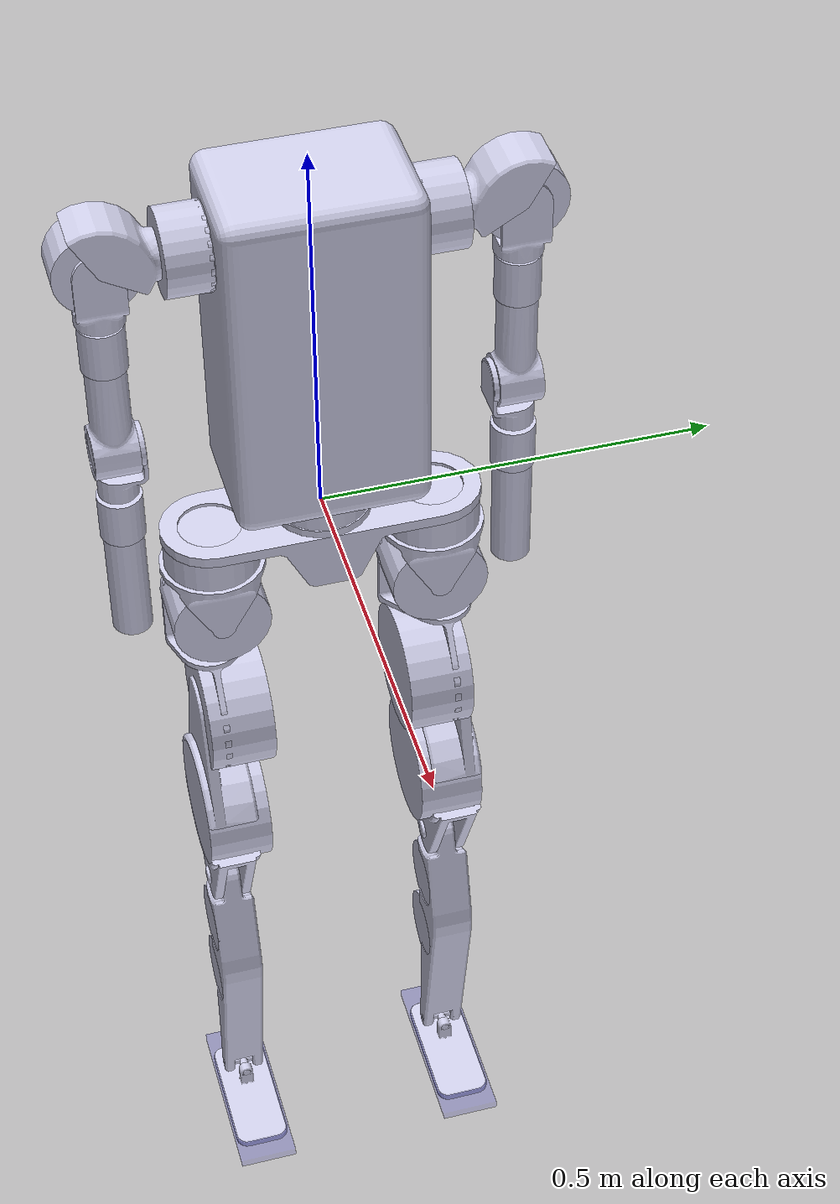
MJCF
<mujoco model="humanoid_yrp">
  <compiler angle="radian" meshdir="meshes/"/>

  <asset>
    <mesh name="pelvis_link" file="pelvis_link.stl"/>
    <mesh name="left_hip_pitch_link" file="left_hip_pitch_link.stl"/>
    <mesh name="left_hip_roll_link" file="left_hip_roll_link.stl"/>
    <mesh name="left_hip_yaw_link" file="left_hip_yaw_link.stl"/>
    <mesh name="left_knee_pitch_link" file="left_knee_pitch_link.stl"/>
    <mesh name="left_ankle_pitch_link" file="left_ankle_pitch_link.stl"/>
    <mesh name="left_ankle_roll_link" file="left_ankle_roll_link.stl"/>
    <mesh name="right_hip_pitch_link" file="right_hip_pitch_link.stl"/>
    <mesh name="right_hip_roll_link" file="right_hip_roll_link.stl"/>
    <mesh name="right_hip_yaw_link" file="right_hip_yaw_link.stl"/>
    <mesh name="right_knee_pitch_link" file="right_knee_pitch_link.stl"/>
    <mesh name="right_ankle_pitch_link" file="right_ankle_pitch_link.stl"/>
    <mesh name="right_ankle_roll_link" file="right_ankle_roll_link.stl"/>
    <mesh name="torso_link" file="torso_link.stl"/>
    <mesh name="left_shoulder_pitch_link" file="left_shoulder_pitch_link.stl"/>
    <mesh name="left_shoulder_roll_link" file="left_shoulder_roll_link.stl"/>
    <mesh name="left_shoulder_yaw_link" file="left_shoulder_yaw_link.stl"/>
    <mesh name="left_elbow_pitch_link" file="left_elbow_pitch_link.stl"/>
    <mesh name="left_elbow_yaw_link" file="left_elbow_yaw_link.stl"/>
    <mesh name="right_shoulder_pitch_link" file="right_shoulder_pitch_link.stl"/>
    <mesh name="right_shoulder_roll_link" file="right_shoulder_roll_link.stl"/>
    <mesh name="right_shoulder_yaw_link" file="right_shoulder_yaw_link.stl"/>
    <mesh name="right_elbow_pitch_link" file="right_elbow_pitch_link.stl"/>
    <mesh name="right_elbow_yaw_link" file="right_elbow_yaw_link.stl"/>
  </asset>

  <worldbody>
    <body name="root">
      <inertial pos="0 0 0" mass="1e-06" diaginertia="1e-09 1e-09 1e-09"/>
      <joint name="floating_base_joint" type="free" limited="false" actuatorfrclimited="false"/>
      <site name="imu_mount" pos="0 0 0"/>
      <body name="pelvis_link">
        <inertial pos="0 0 -0.0331047" quat="0.5 0.5 -0.5 0.5" mass="2.7003" diaginertia="0.015082 0.012947 0.00490969"/>
        <geom type="mesh" contype="0" conaffinity="0" rgba="0.8 0.8 0.9 1" mesh="pelvis_link"/>
        <site name="torso_mount" pos="0 0 0.0475"/>
        <body name="left_hip_yaw_link" pos="0 0.14 -0.0635">
          <inertial pos="0 0 -0.0184659" quat="0 0.707107 0 0.707107" mass="0.608592" diaginertia="0.00148151 0.00127427 0.000772991"/>
          <joint name="left_hip_yaw_joint" pos="0 0 0" axis="0 0 1" range="-2.722 2.722" armature="0.061488" damping="0.0069" frictionloss="0.576"/>
          <geom type="mesh" contype="0" conaffinity="0" rgba="0.8 0.8 0.9 1" mesh="left_hip_yaw_link"/>
          <body name="left_hip_roll_link" pos="-0.027 0 -0.075">
            <inertial pos="0.0186547 0.00773286 -0.112884" quat="0.68979 -0.0379641 -0.0781425 0.718778" mass="0.481682" diaginertia="0.00350877 0.00313741 0.00095478"/>
            <joint name="left_hip_roll_joint" pos="0 0 0" axis="1 0 0" range="-0.5 1.047" armature="0.32256" damping="0.766" frictionloss="2.492"/>
            <geom type="mesh" contype="0" conaffinity="0" rgba="0.8 0.8 0.9 1" mesh="left_hip_roll_link"/>
            <body name="left_hip_pitch_link" pos="0.0275 0.0228 -0.175">
              <inertial pos="0 -0.00576008 -0.181558" quat="0.706862 -0.0185895 0.0185895 0.706862" mass="1.56011" diaginertia="0.021032 0.0186888 0.00348531"/>
              <joint name="left_hip_pitch_joint" pos="0 0 0" axis="0 1 0" range="-3.1415 3.1415" armature="0.155952" damping="0.338" frictionloss="1.481"/>
              <geom type="mesh" contype="0" conaffinity="0" rgba="0.8 0.8 0.9 1" mesh="left_hip_pitch_link"/>
              <body name="left_knee_pitch_link" pos="0 -0.00999965 -0.33">
                <inertial pos="0.0178524 -3.47622e-07 -0.194594" quat="0.707096 0.00386285 0.00386285 0.707096" mass="1.37882" diaginertia="0.0296469 0.0293773 0.00130945"/>
                <joint name="left_knee_pitch_joint" pos="0 0 0" axis="0 1 0" range="0 2.007" armature="0.155952" damping="0.338" frictionloss="1.481"/>
                <geom type="mesh" contype="0" conaffinity="0" rgba="0.8 0.8 0.9 1" mesh="left_knee_pitch_link"/>
                <body name="left_ankle_pitch_link" pos="-0.000857798 2.61427e-07 -0.424999">
                  <inertial pos="1.5474e-09 -6.11443e-07 7.37765e-10" quat="0.500032 0.500032 -0.499968 0.499968" mass="0.0915496" diaginertia="2.67722e-05 1.42226e-05 1.42226e-05"/>
                  <joint name="left_ankle_pitch_joint" pos="0 0 0" axis="0 1 0" range="-1.221 0.872" armature="0.043416" damping="0.028" frictionloss="0.876"/>
                  <geom type="mesh" contype="0" conaffinity="0" rgba="0.8 0.8 0.9 1" mesh="left_ankle_pitch_link"/>
                  <body name="left_ankle_roll_link">
                    <inertial pos="0.0388421 -6.09895e-07 -0.0295267" quat="0 0.715124 0 0.698997" mass="1.02847" diaginertia="0.00308315 0.00269298 0.000478241"/>
                    <joint name="left_ankle_roll_joint" pos="0 0 0" axis="1 0 0" range="-0.436 0.436" armature="0.043416" damping="0.028" frictionloss="0.876"/>
                    <geom type="mesh" contype="0" conaffinity="0" rgba="0.8 0.8 0.9 1" mesh="left_ankle_roll_link"/>
                    <geom name="left_foot_collision" size="0.12 0.04 0.006" pos="0.04135 0 -0.032" type="box" group="1" rgba="0 0 0.7 0.1"/>
                    <body name="left_foot" pos="0.04135 0 -0.037">
                      <inertial pos="0 0 0" mass="1e-06" diaginertia="1e-09 1e-09 1e-09"/>
                    </body>
                  </body>
                </body>
                <body name="left_ankle_pitch_actuator" pos="-0.000201835 0.0240001 -0.0999998">
                  <inertial pos="4.59253e-05 -0.0235544 -0.000101461" quat="0.707107 0.707107 0 0" mass="0.84" diaginertia="0.000782932 0.000782932 0.00115762"/>
                  <geom size="0.0525 0.027" pos="4.59253e-05 -0.0235544 -0.000101461" quat="0.707107 0.707107 0 0" type="cylinder" contype="0" conaffinity="0" rgba="0.8 0.8 0.9 1"/>
                </body>
                <body name="left_ankle_roll_actuator" pos="-0.000423853 -0.0239999 -0.21">
                  <inertial pos="0.000104282 0.0235535 3.90481e-05" quat="0.707107 0.707107 0 0" mass="0.84" diaginertia="0.000782932 0.000782932 0.00115762"/>
                  <geom size="0.0525 0.027" pos="0.000104282 0.0235535 3.90481e-05" quat="0.707107 0.707107 0 0" type="cylinder" contype="0" conaffinity="0" rgba="0.8 0.8 0.9 1"/>
                </body>
              </body>
              <body name="left_knee_pitch_actuator" pos="0 0.0150003 -0.18">
                <inertial pos="-0.000238364 -0.0334461 2.11444e-05" quat="0.707107 0.707107 0 0" mass="3.2" diaginertia="0.00761707 0.00761707 0.01156"/>
                <geom size="0.085 0.0415" pos="-0.000238364 -0.0334461 2.11444e-05" quat="0.707107 0.707107 0 0" type="cylinder" contype="0" conaffinity="0" rgba="0.8 0.8 0.9 1"/>
              </body>
            </body>
            <body name="left_hip_pitch_actuator" pos="0.0275 -0.042 -0.175">
              <inertial pos="-0.000100823 0.0334459 -0.000217026" quat="0.707107 0.707107 0 0" mass="3.2" diaginertia="0.00761707 0.00761707 0.01156"/>
              <geom size="0.085 0.0415" pos="-0.000100823 0.0334459 -0.000217026" quat="0.707107 0.707107 0 0" type="cylinder" contype="0" conaffinity="0" rgba="0.8 0.8 0.9 1"/>
            </body>
          </body>
          <body name="left_hip_roll_actuator" pos="0.0425 0 -0.075">
            <inertial pos="-0.0425 -2.95577e-06 -2.27996e-12" quat="0.707107 0 0.707107 0" mass="2.18" diaginertia="0.00340752 0.00340752 0.00418996"/>
            <geom size="0.062 0.0425" pos="-0.0425 -2.95577e-06 -2.27996e-12" quat="0.707107 0 0.707107 0" type="cylinder" contype="0" conaffinity="0" rgba="0.8 0.8 0.9 1"/>
          </body>
        </body>
        <body name="left_hip_yaw_actuator" pos="0 0.14 -0.023">
          <inertial pos="4.6014e-07 -2.39978e-07 -0.0224909" mass="1.35" diaginertia="0.00167724 0.00167724 0.00243"/>
          <geom size="0.06 0.03205" pos="4.6014e-07 -2.39978e-07 -0.0224909" type="cylinder" contype="0" conaffinity="0" rgba="0.8 0.8 0.9 1"/>
        </body>
        <body name="right_hip_yaw_link" pos="0 -0.14 -0.0635">
          <inertial pos="0 0 -0.0184659" quat="0 0.707107 0 0.707107" mass="0.608592" diaginertia="0.00148151 0.00127427 0.000772991"/>
          <joint name="right_hip_yaw_joint" pos="0 0 0" axis="0 0 1" range="-2.722 2.722" armature="0.061488" damping="0.0069" frictionloss="0.576"/>
          <geom type="mesh" contype="0" conaffinity="0" rgba="0.8 0.8 0.9 1" mesh="right_hip_yaw_link"/>
          <body name="right_hip_roll_link" pos="-0.027 0 -0.075">
            <inertial pos="0.0186547 -0.00773286 -0.112884" quat="0.718778 -0.0781425 -0.0379641 0.68979" mass="0.481682" diaginertia="0.00350877 0.00313741 0.00095478"/>
            <joint name="right_hip_roll_joint" pos="0 0 0" axis="1 0 0" range="-1.047 0.5" armature="0.32256" damping="0.766" frictionloss="2.492"/>
            <geom type="mesh" contype="0" conaffinity="0" rgba="0.8 0.8 0.9 1" mesh="right_hip_roll_link"/>
            <body name="right_hip_pitch_link" pos="0.0275 -0.0228 -0.175">
              <inertial pos="0 0.00576008 -0.181558" quat="0.706862 0.0185895 -0.0185895 0.706862" mass="1.56011" diaginertia="0.021032 0.0186888 0.00348531"/>
              <joint name="right_hip_pitch_joint" pos="0 0 0" axis="0 1 0" range="-3.1415 3.1415" armature="0.155952" damping="0.338" frictionloss="1.481"/>
              <geom type="mesh" contype="0" conaffinity="0" rgba="0.8 0.8 0.9 1" mesh="right_hip_pitch_link"/>
              <body name="right_knee_pitch_link" pos="0 0.01 -0.33">
                <inertial pos="0.0182451 8.45995e-10 -0.194558" quat="0.7071 0.00314926 0.00314926 0.7071" mass="1.37882" diaginertia="0.0296469 0.0293773 0.00130945"/>
                <joint name="right_knee_pitch_joint" pos="0 0 0" axis="0 1 0" range="0 2.007" armature="0.155952" damping="0.338" frictionloss="1.481"/>
                <geom type="mesh" contype="0" conaffinity="0" rgba="0.8 0.8 0.9 1" mesh="right_knee_pitch_link"/>
                <body name="right_ankle_pitch_link" pos="0 0 -0.425">
                  <inertial pos="1.5474e-09 -1.54739e-09 0" quat="0.5 0.5 -0.5 0.5" mass="0.0915496" diaginertia="2.67722e-05 1.42226e-05 1.42226e-05"/>
                  <joint name="right_ankle_pitch_joint" pos="0 0 0" axis="0 1 0" range="-1.221 0.872" armature="0.043416" damping="0.028" frictionloss="0.876"/>
                  <geom type="mesh" contype="0" conaffinity="0" rgba="0.8 0.8 0.9 1" mesh="right_ankle_pitch_link"/>
                  <body name="right_ankle_roll_link">
                    <inertial pos="0.0388459 0 -0.0295218" quat="0 0.71508 0 0.699043" mass="1.02847" diaginertia="0.00308315 0.00269298 0.000478241"/>
                    <joint name="right_ankle_roll_joint" pos="0 0 0" axis="1 0 0" range="-0.436 0.436" armature="0.043416" damping="0.028" frictionloss="0.876"/>
                    <geom type="mesh" contype="0" conaffinity="0" rgba="0.8 0.8 0.9 1" mesh="right_ankle_roll_link"/>
                    <geom name="right_foot_collision" size="0.12 0.04 0.006" pos="0.04135 0 -0.032" type="box" group="1" rgba="0 0 0.7 0.1"/>
                    <body name="right_foot" pos="0.04135 0 -0.037">
                      <inertial pos="0 0 0" mass="1e-06" diaginertia="1e-09 1e-09 1e-09"/>
                    </body>
                  </body>
                </body>
                <body name="right_ankle_pitch_actuator" pos="0 -0.024 -0.1">
                  <inertial pos="-3.92528e-05 0.023554 0.000104203" quat="0.707107 0.707107 0 0" mass="0.84" diaginertia="0.000782932 0.000782932 0.00115762"/>
                  <geom size="0.0525 0.027" pos="-3.92528e-05 0.023554 0.000104203" quat="0.707107 0.707107 0 0" type="cylinder" contype="0" conaffinity="0" rgba="0.8 0.8 0.9 1"/>
                </body>
                <body name="right_ankle_roll_actuator" pos="0 0.024 -0.21">
                  <inertial pos="-0.000101531 -0.023554 -4.57216e-05" quat="0.707107 0.707107 0 0" mass="0.84" diaginertia="0.000782932 0.000782932 0.00115762"/>
                  <geom size="0.0525 0.027" pos="-0.000101531 -0.023554 -4.57216e-05" quat="0.707107 0.707107 0 0" type="cylinder" contype="0" conaffinity="0" rgba="0.8 0.8 0.9 1"/>
                </body>
              </body>
              <body name="right_knee_pitch_actuator" pos="0 -0.015 -0.18">
                <inertial pos="-0.000137514 0.0334459 0.000195846" quat="0.707107 0.707107 0 0" mass="3.2" diaginertia="0.00761707 0.00761707 0.01156"/>
                <geom size="0.085 0.0415" pos="-0.000137514 0.0334459 0.000195846" quat="0.707107 0.707107 0 0" type="cylinder" contype="0" conaffinity="0" rgba="0.8 0.8 0.9 1"/>
              </body>
            </body>
            <body name="right_hip_pitch_actuator" pos="0.0275 0.042 -0.175">
              <inertial pos="-0.00010085 -0.0334459 0.000217013" quat="0.707107 0.707107 0 0" mass="3.2" diaginertia="0.00761707 0.00761707 0.01156"/>
              <geom size="0.085 0.0415" pos="-0.00010085 -0.0334459 0.000217013" quat="0.707107 0.707107 0 0" type="cylinder" contype="0" conaffinity="0" rgba="0.8 0.8 0.9 1"/>
            </body>
          </body>
          <body name="right_hip_roll_actuator" pos="0.0425 0 -0.075">
            <inertial pos="-0.0425 -2.95577e-06 -1.95313e-09" quat="0.707107 0 0.707107 0" mass="2.18" diaginertia="0.00340752 0.00340752 0.00418996"/>
            <geom size="0.062 0.0425" pos="-0.0425 -2.95577e-06 -1.95313e-09" quat="0.707107 0 0.707107 0" type="cylinder" contype="0" conaffinity="0" rgba="0.8 0.8 0.9 1"/>
          </body>
        </body>
        <body name="right_hip_yaw_actuator" pos="0 -0.14 -0.023">
          <inertial pos="5.16968e-07 -4.542e-08 -0.0224909" mass="1.35" diaginertia="0.00167724 0.00167724 0.00243"/>
          <geom size="0.06 0.03205" pos="5.16968e-07 -4.542e-08 -0.0224909" type="cylinder" contype="0" conaffinity="0" rgba="0.8 0.8 0.9 1"/>
        </body>
        <body name="torso_yaw_link" pos="0 0 0.0475">
          <inertial pos="0 0 0.212121" mass="13.6222" diaginertia="0.279463 0.248413 0.0991731"/>
          <joint name="torso_yaw_joint" pos="0 0 0" axis="0 0 1" range="-1.5707 1.5707" armature="0.061488" damping="0.0069" frictionloss="0.576"/>
          <geom type="mesh" contype="0" conaffinity="0" rgba="0.8 0.8 0.9 1" mesh="torso_link"/>
          <site name="left_arm_mount" pos="0 0.176 0.355"/>
          <site name="right_arm_mount" pos="0 -0.176 0.355"/>
          <body name="torso" pos="0 0 0.355">
            <inertial pos="0 0 0" mass="1e-06" diaginertia="1e-09 1e-09 1e-09"/>
          </body>
          <body name="left_shoulder_pitch_link" pos="0 0.176 0.355">
            <inertial pos="-8.31465e-10 0.034932 0.0200071" quat="0.284455 0.647368 -0.647368 0.284455" mass="0.242101" diaginertia="0.000423529 0.000359202 0.000178981"/>
            <joint name="left_shoulder_pitch_joint" pos="0 0 0" axis="0 1 0" range="-2.618 2.007" armature="0.043416" damping="0.028" frictionloss="0.876"/>
            <geom type="mesh" contype="0" conaffinity="0" rgba="0.8 0.8 0.9 1" mesh="left_shoulder_pitch_link"/>
            <body name="left_shoulder_roll_link" pos="0.024 0.07 0">
              <inertial pos="-0.0192802 7.42705e-09 -0.0545648" quat="0.96696 -2.1985e-07 0.254927 -8.33909e-07" mass="0.28974" diaginertia="0.000310056 0.000288331 0.000120903"/>
              <joint name="left_shoulder_roll_joint" pos="0 0 0" axis="1 0 0" range="-0.175 2.531" armature="0.043416" damping="0.028" frictionloss="0.876"/>
              <geom type="mesh" contype="0" conaffinity="0" rgba="0.8 0.8 0.9 1" mesh="left_shoulder_roll_link"/>
              <body name="left_shoulder_yaw_link" pos="-0.027 0 -0.1405">
                <inertial pos="-3.90912e-10 8.07792e-11 -0.0660303" quat="0.707107 0 0 0.707107" mass="0.367898" diaginertia="0.000739689 0.000721274 0.000148577"/>
                <joint name="left_shoulder_yaw_joint" pos="0 0 0" axis="0 0 1" range="-2.88 2.88" armature="0.0178848" damping="0.014" frictionloss="0.23"/>
                <geom type="mesh" contype="0" conaffinity="0" rgba="0.8 0.8 0.9 1" mesh="left_shoulder_yaw_link"/>
                <body name="left_elbow_pitch_link" pos="0 -0.03 -0.128">
                  <inertial pos="-9.27985e-10 0.0223713 -0.0417957" quat="0.667618 0.232994 -0.232994 0.667618" mass="0.226963" diaginertia="0.000158854 0.000148219 6.5726e-05"/>
                  <joint name="left_elbow_pitch_joint" pos="0 0 0" axis="0 1 0" range="-2.182 0" armature="0.0178848" damping="0.014" frictionloss="0.23"/>
                  <geom type="mesh" contype="0" conaffinity="0" rgba="0.8 0.8 0.9 1" mesh="left_elbow_pitch_link"/>
                  <body name="left_elbow_yaw_link" pos="0 0.029 -0.1255">
                    <inertial pos="0 0 -0.0779665" mass="0.306173" diaginertia="0.000668211 0.000668211 9.56405e-05"/>
                    <joint name="left_elbow_yaw_joint" pos="0 0 0" axis="0 0 1" range="-2.356 2.356" armature="0.0178848" damping="0.014" frictionloss="0.23"/>
                    <geom type="mesh" contype="0" conaffinity="0" rgba="0.8 0.8 0.9 1" mesh="left_elbow_yaw_link"/>
                    <body name="left_end_effector" pos="0 0 -0.155">
                      <inertial pos="0 0 0" mass="1e-06" diaginertia="1e-09 1e-09 1e-09"/>
                    </body>
                  </body>
                  <body name="left_elbow_yaw_actuator" pos="0 0.029 -0.065">
                    <inertial pos="-2.68858e-06 7.2086e-06 -0.034498" mass="0.377" diaginertia="0.000188885 0.000188885 0.000147784"/>
                    <geom size="0.028 0.03025" pos="-2.68858e-06 7.2086e-06 -0.034498" type="cylinder" contype="0" conaffinity="0" rgba="0.8 0.8 0.9 1"/>
                  </body>
                </body>
                <body name="left_shoulder_yaw_actuator" pos="0 0 0.0605">
                  <inertial pos="5.24476e-06 -5.62893e-06 -0.034498" mass="0.377" diaginertia="0.000188885 0.000188885 0.000147784"/>
                  <geom size="0.028 0.03025" pos="5.24476e-06 -5.62893e-06 -0.034498" type="cylinder" contype="0" conaffinity="0" rgba="0.8 0.8 0.9 1"/>
                </body>
                <body name="left_elbow_pitch_actuator" pos="0 0.0305 -0.128">
                  <inertial pos="-2.68858e-06 -0.034498 -7.2086e-06" quat="0.707107 0.707107 0 0" mass="0.377" diaginertia="0.000188885 0.000188885 0.000147784"/>
                  <geom size="0.028 0.03025" pos="-2.68858e-06 -0.034498 -7.2086e-06" quat="0.707107 0.707107 0 0" type="cylinder" contype="0" conaffinity="0" rgba="0.8 0.8 0.9 1"/>
                </body>
              </body>
            </body>
            <body name="left_shoulder_roll_actuator" pos="-0.0269 0.07 0">
              <inertial pos="0.022954 -0.000101438 -4.59265e-05" quat="0.707107 0 0.707107 0" mass="0.84" diaginertia="0.000782932 0.000782932 0.00115762"/>
              <geom size="0.0525 0.027" pos="0.022954 -0.000101438 -4.59265e-05" quat="0.707107 0 0.707107 0" type="cylinder" contype="0" conaffinity="0" rgba="0.8 0.8 0.9 1"/>
            </body>
          </body>
          <body name="left_shoulder_pitch_actuator" pos="0 0.125 0.355">
            <inertial pos="0.000111292 0.022954 -3.61176e-06" quat="0.707107 0.707107 0 0" mass="0.84" diaginertia="0.000782932 0.000782932 0.00115762"/>
            <geom size="0.0525 0.027" pos="0.000111292 0.022954 -3.61176e-06" quat="0.707107 0.707107 0 0" type="cylinder" contype="0" conaffinity="0" rgba="0.8 0.8 0.9 1"/>
          </body>
          <body name="right_shoulder_pitch_link" pos="0 -0.176 0.355">
            <inertial pos="8.31465e-10 -0.034932 0.0200071" quat="0.647368 0.284455 -0.284455 0.647368" mass="0.242101" diaginertia="0.000423529 0.000359202 0.000178981"/>
            <joint name="right_shoulder_pitch_joint" pos="0 0 0" axis="0 1 0" range="-2.618 2.007" armature="0.043416" damping="0.028" frictionloss="0.876"/>
            <geom type="mesh" contype="0" conaffinity="0" rgba="0.8 0.8 0.9 1" mesh="right_shoulder_pitch_link"/>
            <body name="right_shoulder_roll_link" pos="0.024 -0.07 0">
              <inertial pos="-0.0192802 7.42705e-09 -0.0545648" quat="0.96696 -2.1985e-07 0.254927 -8.33909e-07" mass="0.28974" diaginertia="0.000310056 0.000288331 0.000120903"/>
              <joint name="right_shoulder_roll_joint" pos="0 0 0" axis="1 0 0" range="-2.531 0.175" armature="0.043416" damping="0.028" frictionloss="0.876"/>
              <geom type="mesh" contype="0" conaffinity="0" rgba="0.8 0.8 0.9 1" mesh="right_shoulder_roll_link"/>
              <body name="right_shoulder_yaw_link" pos="-0.027 0 -0.1405">
                <inertial pos="-3.90912e-10 8.07791e-11 -0.0660303" quat="0.707107 0 0 0.707107" mass="0.367898" diaginertia="0.000739689 0.000721274 0.000148577"/>
                <joint name="right_shoulder_yaw_joint" pos="0 0 0" axis="0 0 1" range="-2.88 2.88" armature="0.0178848" damping="0.014" frictionloss="0.23"/>
                <geom type="mesh" contype="0" conaffinity="0" rgba="0.8 0.8 0.9 1" mesh="right_shoulder_yaw_link"/>
                <body name="right_elbow_pitch_link" pos="0 0.03 -0.128">
                  <inertial pos="9.27985e-10 -0.0223713 -0.0417957" quat="0.667618 -0.232994 0.232994 0.667618" mass="0.226963" diaginertia="0.000158854 0.000148219 6.5726e-05"/>
                  <joint name="right_elbow_pitch_joint" pos="0 0 0" axis="0 1 0" range="-2.182 0" armature="0.0178848" damping="0.014" frictionloss="0.23"/>
                  <geom type="mesh" contype="0" conaffinity="0" rgba="0.8 0.8 0.9 1" mesh="right_elbow_pitch_link"/>
                  <body name="right_elbow_yaw_link" pos="0 -0.029 -0.1255">
                    <inertial pos="0 0 -0.0779665" mass="0.306173" diaginertia="0.000668211 0.000668211 9.56405e-05"/>
                    <joint name="right_elbow_yaw_joint" pos="0 0 0" axis="0 0 1" range="-2.356 2.356" armature="0.0178848" damping="0.014" frictionloss="0.23"/>
                    <geom type="mesh" contype="0" conaffinity="0" rgba="0.8 0.8 0.9 1" mesh="right_elbow_yaw_link"/>
                    <body name="right_end_effector" pos="0 0 -0.155">
                      <inertial pos="0 0 0" mass="1e-06" diaginertia="1e-09 1e-09 1e-09"/>
                    </body>
                  </body>
                  <body name="right_elbow_yaw_actuator" pos="0 -0.029 -0.065">
                    <inertial pos="-2.68858e-06 7.2086e-06 -0.034498" mass="0.377" diaginertia="0.000188885 0.000188885 0.000147784"/>
                    <geom size="0.028 0.03025" pos="-2.68858e-06 7.2086e-06 -0.034498" type="cylinder" contype="0" conaffinity="0" rgba="0.8 0.8 0.9 1"/>
                  </body>
                </body>
                <body name="right_shoulder_yaw_actuator" pos="0 0 0.0605">
                  <inertial pos="-5.24476e-06 5.62893e-06 -0.034498" mass="0.377" diaginertia="0.000188885 0.000188885 0.000147784"/>
                  <geom size="0.028 0.03025" pos="-5.24476e-06 5.62893e-06 -0.034498" type="cylinder" contype="0" conaffinity="0" rgba="0.8 0.8 0.9 1"/>
                </body>
                <body name="right_elbow_pitch_actuator" pos="0 -0.0305 -0.128">
                  <inertial pos="2.68858e-06 0.034498 -7.2086e-06" quat="0.707107 0.707107 0 0" mass="0.377" diaginertia="0.000188885 0.000188885 0.000147784"/>
                  <geom size="0.028 0.03025" pos="2.68858e-06 0.034498 -7.2086e-06" quat="0.707107 0.707107 0 0" type="cylinder" contype="0" conaffinity="0" rgba="0.8 0.8 0.9 1"/>
                </body>
              </body>
            </body>
            <body name="right_shoulder_roll_actuator" pos="-0.0269 -0.07 0">
              <inertial pos="0.022954 -0.000101438 -4.59265e-05" quat="0.707107 0 0.707107 0" mass="0.84" diaginertia="0.000782932 0.000782932 0.00115762"/>
              <geom size="0.0525 0.027" pos="0.022954 -0.000101438 -4.59265e-05" quat="0.707107 0 0.707107 0" type="cylinder" contype="0" conaffinity="0" rgba="0.8 0.8 0.9 1"/>
            </body>
          </body>
          <body name="right_shoulder_pitch_actuator" pos="0 -0.125 0.355">
            <inertial pos="-0.000111292 -0.022954 -3.61176e-06" quat="0.707107 0.707107 0 0" mass="0.84" diaginertia="0.000782932 0.000782932 0.00115762"/>
            <geom size="0.0525 0.027" pos="-0.000111292 -0.022954 -3.61176e-06" quat="0.707107 0.707107 0 0" type="cylinder" contype="0" conaffinity="0" rgba="0.8 0.8 0.9 1"/>
          </body>
        </body>
        <body name="torso_yaw_actuator">
          <inertial pos="5.16504e-07 -5.04132e-08 0.0250091" mass="1.35" diaginertia="0.00167724 0.00167724 0.00243"/>
          <geom size="0.06 0.03205" pos="5.16504e-07 -5.04132e-08 0.0250091" type="cylinder" contype="0" conaffinity="0" rgba="0.8 0.8 0.9 1"/>
        </body>
      </body>
      <body name="imu">
        <inertial pos="-0.00555947 -0.00769997 0.00152983" quat="0.521528 0.521522 -0.477507 0.477504" mass="0.0740597" diaginertia="1.03873e-05 6.76993e-06 5.29597e-06"/>
        <site name="imu_site" pos="0 0 0"/>
      </body>
    </body>
  </worldbody>

  <actuator>
    <general name="left_hip_yaw_act" joint="left_hip_yaw_joint" ctrllimited="true" ctrlrange="-150 150"/>
    <general name="left_hip_roll_act" joint="left_hip_roll_joint" ctrllimited="true" ctrlrange="-360 360"/>
    <general name="left_hip_pitch_act" joint="left_hip_pitch_joint" ctrllimited="true" ctrlrange="-380 380"/>
    <general name="left_knee_pitch_act" joint="left_knee_pitch_joint" ctrllimited="true" ctrlrange="-380 380"/>
    <general name="left_ankle_pitch_act" joint="left_ankle_pitch_joint" ctrllimited="true" ctrlrange="-90 90"/>
    <general name="left_ankle_roll_act" joint="left_ankle_roll_joint" ctrllimited="true" ctrlrange="-90 90"/>
    <general name="right_hip_yaw_act" joint="right_hip_yaw_joint" ctrllimited="true" ctrlrange="-150 150"/>
    <general name="right_hip_roll_act" joint="right_hip_roll_joint" ctrllimited="true" ctrlrange="-360 360"/>
    <general name="right_hip_pitch_act" joint="right_hip_pitch_joint" ctrllimited="true" ctrlrange="-380 380"/>
    <general name="right_knee_pitch_act" joint="right_knee_pitch_joint" ctrllimited="true" ctrlrange="-380 380"/>
    <general name="right_ankle_pitch_act" joint="right_ankle_pitch_joint" ctrllimited="true" ctrlrange="-90 90"/>
    <general name="right_ankle_roll_act" joint="right_ankle_roll_joint" ctrllimited="true" ctrlrange="-90 90"/>
    <general name="torso_yaw_act" joint="torso_yaw_joint" ctrllimited="true" ctrlrange="-150 150"/>
    <general name="left_shoulder_pitch_act" joint="left_shoulder_pitch_joint" ctrllimited="true" ctrlrange="-90 90"/>
    <general name="left_shoulder_roll_act" joint="left_shoulder_roll_joint" ctrllimited="true" ctrlrange="-90 90"/>
    <general name="left_shoulder_yaw_act" joint="left_shoulder_yaw_joint" ctrllimited="true" ctrlrange="-36 36"/>
    <general name="left_elbow_pitch_act" joint="left_elbow_pitch_joint" ctrllimited="true" ctrlrange="-36 36"/>
    <general name="left_elbow_yaw_act" joint="left_elbow_yaw_joint" ctrllimited="true" ctrlrange="-36 36"/>
    <general name="right_shoulder_pitch_act" joint="right_shoulder_pitch_joint" ctrllimited="true" ctrlrange="-90 90"/>
    <general name="right_shoulder_roll_act" joint="right_shoulder_roll_joint" ctrllimited="true" ctrlrange="-90 90"/>
    <general name="right_shoulder_yaw_act" joint="right_shoulder_yaw_joint" ctrllimited="true" ctrlrange="-36 36"/>
    <general name="right_elbow_pitch_act" joint="right_elbow_pitch_joint" ctrllimited="true" ctrlrange="-36 36"/>
    <general name="right_elbow_yaw_act" joint="right_elbow_yaw_joint" ctrllimited="true" ctrlrange="-36 36"/>
  </actuator>

  <sensor>
    <accelerometer site="imu_site" name="accel" noise="0.9"/>
    <gyro site="imu_site" name="gyro" noise="0.026"/>
    <framequat objtype="site" objname="imu_site" name="frame_quat" noise="0.1072"/>
  </sensor>
</mujoco>
